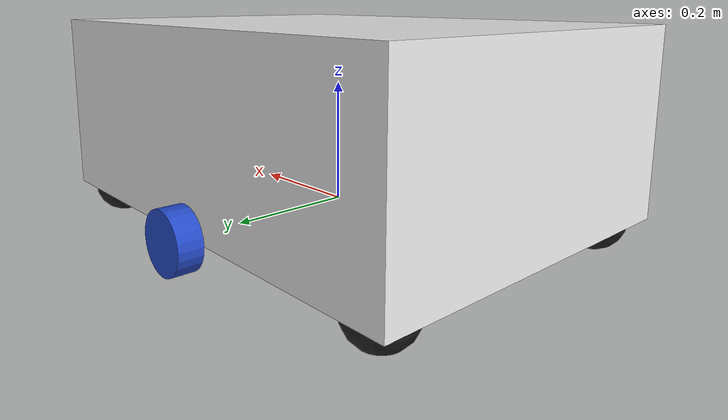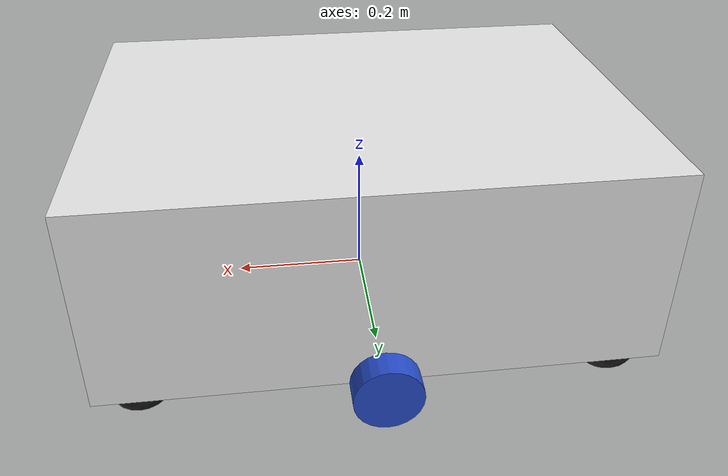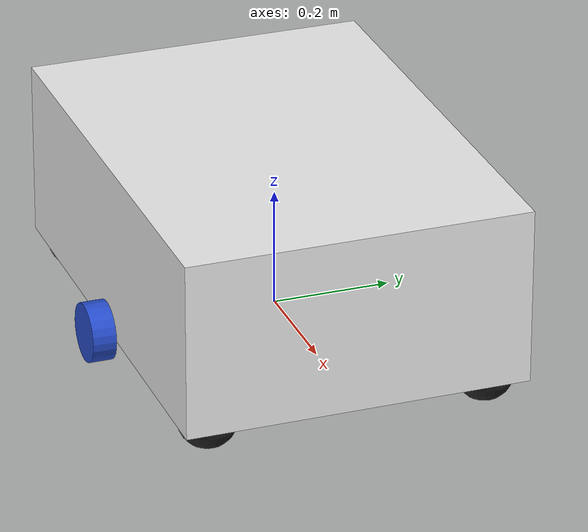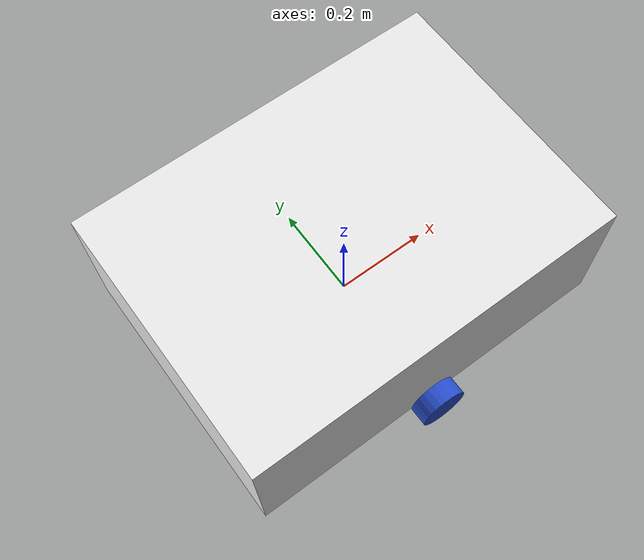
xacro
<?xml version="1.0"?>
<robot xmlns:xacro="http://www.ros.org/wiki/xacro">
    <link name="base_link">
    </link>

    <joint name="base_footprint_joint" type="fixed">
        <parent link="base_link"/>
        <child link="base_footprint"/>
        <origin xyz="0 0 0" rpy="0 0 0"/>
    </joint>

    <link name="base_footprint">
    </link>

    <!-- Chassis -->
    <joint name="chassis_joint" type="fixed">
        <parent link="base_link"/>
        <child link="chassis"/>
        <origin xyz="0 0 0"/>
    </joint>
    <link name="chassis">
        <visual>
            <origin xyz="0 0 0.15" rpy="0 0 0"/>
            <geometry>
                <box size="0.8 0.58 0.3"/>
            </geometry>
            <material name="white"/>
        </visual>
        <collision>
            <origin xyz="0 0 0.15" rpy="0 0 0"/>
            <geometry>
                <box size="0.8 0.58 0.3"/>
            </geometry>
        </collision>
       <xacro:inertial_box mass="84" x="0.8" y="0.58" z="0.3">
            <origin xyz="0 0 0.15" rpy="0 0 0"/>
        </xacro:inertial_box>
    </link>

    <!-- Left Wheel -->
    <joint name="left_wheel_joint" type="continuous">
        <parent link="base_link"/>
        <child link="left_wheel"/>
        <origin xyz="0 0.31 0" rpy="-${pi/2} 0 0"/>
        <axis xyz="0 0 1"/>
    </joint>
    <link name="left_wheel">
        <visual>
            <geometry>
                <cylinder length="0.04" radius="0.05"/>
            </geometry>
            <material name="blue"/>
        </visual>
        <collision>
            <geometry>
                <cylinder length="0.04" radius="0.05"/>
            </geometry>
        </collision>
        <xacro:inertial_cylinder mass="1" length="0.04" radius="0.05">
            <origin xyz="0 0 0" rpy="0 0 0"/>
        </xacro:inertial_cylinder>
    </link>

    <!-- Right Wheel -->
    <joint name="right_wheel_joint" type="continuous">
        <parent link="base_link"/>
        <child link="right_wheel"/>
        <origin xyz="0 -0.31 0" rpy="${pi/2} 0 0"/>
        <axis xyz="0 0 -1"/>
    </joint>
    <link name="right_wheel">
        <visual>
            <geometry>
                <cylinder length="0.04" radius="0.05"/>
            </geometry>
            <material name="blue"/>
        </visual>
        <collision>
            <geometry>
                <cylinder length="0.04" radius="0.05"/>
            </geometry>
        </collision>
        <xacro:inertial_cylinder mass="1" length="0.04" radius="0.05">
            <origin xyz="0 0 0" rpy="0 0 0"/>
        </xacro:inertial_cylinder>
    </link>

    <!-- Caster Wheels -->
    <joint name="top_left_caster_wheel_joint" type="fixed">
        <parent link="chassis"/>
        <child link="top_left_caster_wheel"/>
        <origin xyz="0.34 0.235 0" rpy="0 0 0"/>
    </joint>
    <link name="top_left_caster_wheel">
        <visual>
            <geometry>
                <sphere radius="0.05"/>
            </geometry>
            <material name="black"/>
        </visual>
        <collision>
            <geometry>
                <sphere radius="0.05"/>
            </geometry>
        </collision>
        <xacro:inertial_sphere mass="2" radius="0.05">
            <origin xyz="0 0 0" rpy="0 0 0"/>
        </xacro:inertial_sphere>
    </link>
    <gazebo reference="top_left_caster_wheel">
        <mu1 value="0.001" />
        <mu2 value="0.001" />
    </gazebo>

    <joint name="top_right_caster_wheel_joint" type="fixed">
        <parent link="chassis"/>
        <child link="top_right_caster_wheel"/>
        <origin xyz="0.34 -0.235 0" rpy="0 0 0"/>
    </joint>
    <link name="top_right_caster_wheel">
        <visual>
            <geometry>
                <sphere radius="0.05"/>
            </geometry>
            <material name="black"/>
        </visual>
        <collision>
            <geometry>
                <sphere radius="0.05"/>
            </geometry>
        </collision>
        <xacro:inertial_sphere mass="2" radius="0.05">
            <origin xyz="0 0 0" rpy="0 0 0"/>
        </xacro:inertial_sphere>
    </link>
    <gazebo reference="top_right_caster_wheel">
        <mu1 value="0.001" />
        <mu2 value="0.001" />
    </gazebo>

    <joint name="bottom_left_caster_wheel_joint" type="fixed">
        <parent link="chassis"/>
        <child link="bottom_left_caster_wheel"/>
        <origin xyz="-0.34 0.235 0" rpy="0 0 0"/>
    </joint>
    <link name="bottom_left_caster_wheel">
        <visual>
            <geometry>
                <sphere radius="0.05"/>
            </geometry>
            <material name="black"/>
        </visual>
        <collision>
            <geometry>
                <sphere radius="0.05"/>
            </geometry>
        </collision>
        <xacro:inertial_sphere mass="2" radius="0.05">
            <origin xyz="0 0 0" rpy="0 0 0"/>
        </xacro:inertial_sphere>
    </link>
    <gazebo reference="bottom_left_caster_wheel">
        <mu1 value="0.001" />
        <mu2 value="0.001" />
    </gazebo>

    <joint name="bottom_right_caster_wheel_joint" type="fixed">
        <parent link="chassis"/>
        <child link="bottom_right_caster_wheel"/>
        <origin xyz="-0.34 -0.235 0" rpy="0 0 0"/>
    </joint>
    <link name="bottom_right_caster_wheel">
        <visual>
            <geometry>
                <sphere radius="0.05"/>
            </geometry>
            <material name="black"/>
        </visual>
        <collision>
            <geometry>
                <sphere radius="0.05"/>
            </geometry>
        </collision>
        <xacro:inertial_sphere mass="2" radius="0.05">
            <origin xyz="0 0 0" rpy="0 0 0"/>
        </xacro:inertial_sphere>
    </link>
    <gazebo reference="bottom_right_caster_wheel">
        <mu1 value="0.001" />
        <mu2 value="0.001" />
    </gazebo>
</robot>
